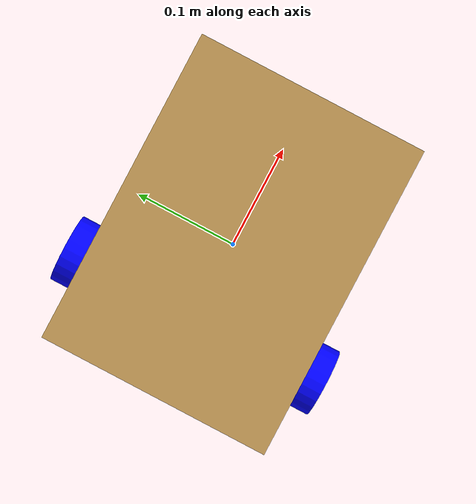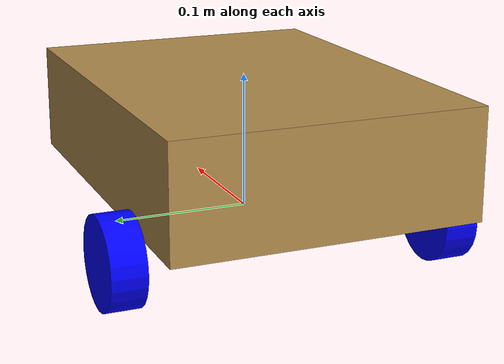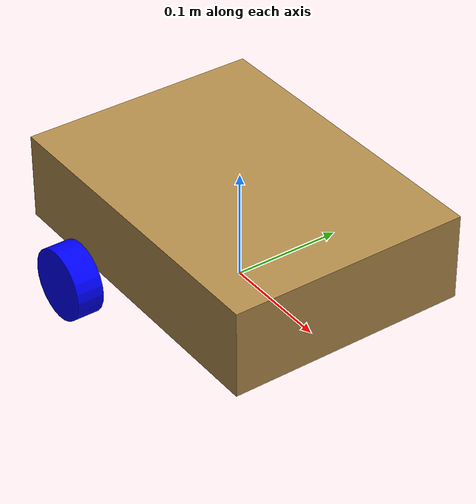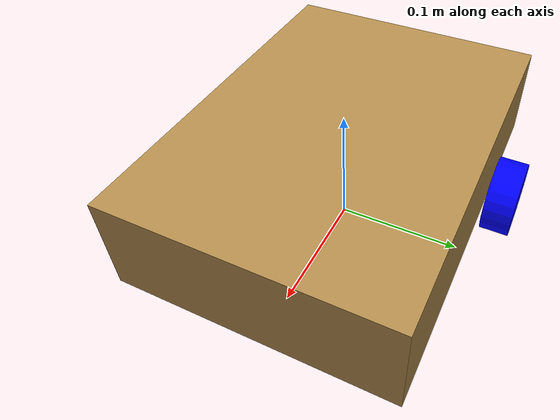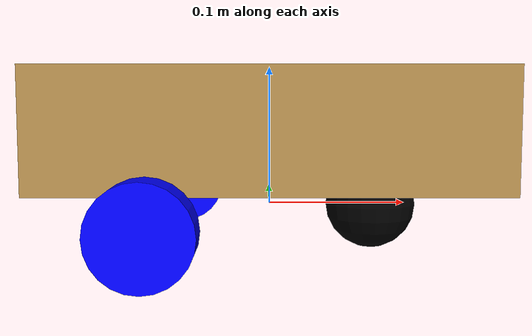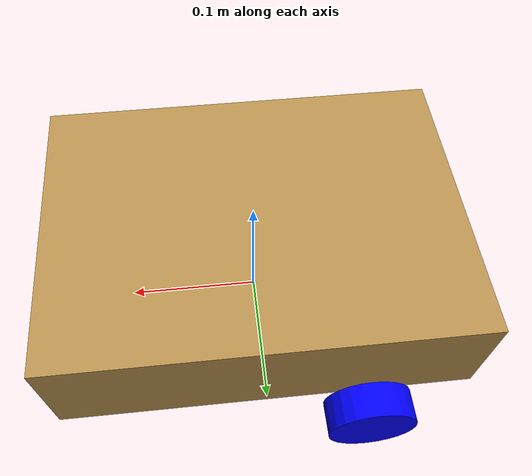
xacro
<?xml version="1.0"?>

<robot xmlns:xacro="http://www.ros.org/wiki/xacro" name="diffbot">

    <!-- COLOR DEFINITIONS -->
    <material name="white">
        <color rgba="1 1 1 1" />
    </material>

    <material name="orange">
        <color rgba="1 0.3 0.1 1"/>
    </material>

    <material name="blue">
        <color rgba="0 0 1 1"/>
    </material>

    <material name="black">
        <color rgba="0 0 0 1"/>
    </material>

    <material name="brown">
        <color rgba="0.7 0.55 0.3 1"/>
    </material>

    <!-- ________________________ ARGUMENT DEFINITIONS ________________________ -->

    <!-- ROS2 VERSION -->
    <xacro:arg name="is_ignition" default="true"/>

    <!-- ________________________ XACRO FILE DEPENDENCIES ________________________ -->

    <!-- INCLUDE INERTIAL MACROS -->
    <xacro:include filename="$(find diffbot_description)/urdf/inertial_macros.xacro"/>

    <!-- GAZEBO -->
    <xacro:include filename="$(find diffbot_description)/urdf/diffbot_gazebo.xacro"/>

    <!-- ROS2 CONTROL -->
    <xacro:include filename="$(find diffbot_description)/urdf/diffbot_ros2_control.xacro"/>

    <!-- ________________________ DIFFBOT URDF MODEL ________________________ -->

    <!-- BASE LINK -->
    <link name="base_link"/>

    <!-- CHASSIS -->
    <joint name="chassis_joint" type="fixed">
        <parent link="base_link"/>
        <child link="chassis"/>
        <origin xyz="0 0 0.06"/>
    </joint>

    <link name="chassis">
        <visual>
            <origin xyz="0 0 0"/>
            <geometry>
                <box size="0.3 0.22 0.08"/>
            </geometry>
            <material name="brown"/>
        </visual>
        <collision>
            <origin xyz="0 0 0"/>
            <geometry>
                <box size="0.3 0.22 0.08"/>
            </geometry>
        </collision>
        <xacro:inertial_box mass="0.5" x="0.3" y="0.22" z="0.08">
            <origin xyz="0 0 0" rpy="0 0 0"/>
        </xacro:inertial_box>
    </link>

    <!-- LEFT WHEEL -->
    <joint name="left_wheel_joint" type="continuous">
        <parent link="base_link"/>
        <child link="left_wheel"/>
        <origin xyz="-0.075 0.1225 0" rpy="-${pi/2} 0 0" />
        <axis xyz="0 0 1"/>
    </joint>

    <link name="left_wheel">
        <visual>
            <geometry>
                <cylinder radius="0.033" length="0.025"/>
            </geometry>
            <material name="blue"/>
        </visual>
        <collision>
            <geometry>
                <cylinder radius="0.033" length="0.025"/>
            </geometry>
        </collision>
        <xacro:inertial_cylinder mass="0.1" length="0.025" radius="0.033">
            <origin xyz="0 0 0" rpy="0 0 0"/>
        </xacro:inertial_cylinder>
    </link>

    <!-- RIGHT WHEEL -->

    <joint name="right_wheel_joint" type="continuous">
        <parent link="base_link"/>
        <child link="right_wheel"/>
        <origin xyz="-0.075 -0.1225 0" rpy="${pi/2} 0 0" />
        <axis xyz="0 0 -1"/>
    </joint>

    <link name="right_wheel">
        <visual>
            <geometry>
                <cylinder radius="0.033" length="0.025"/>
            </geometry>
            <material name="blue"/>
        </visual>
        <collision>
            <geometry>
                <cylinder radius="0.033" length="0.025"/>
            </geometry>
        </collision>
        <xacro:inertial_cylinder mass="0.1" length="0.025" radius="0.033">
            <origin xyz="0 0 0" rpy="0 0 0"/>
        </xacro:inertial_cylinder>
    </link>

    <!-- CASTER WHEEL -->

    <joint name="caster_wheel_joint" type="fixed">
        <parent link="base_link"/>
        <child link="caster_wheel"/>
        <origin xyz="0.075 0 0"/>
    </joint>

    <link name="caster_wheel">
        <visual>
            <geometry>
                <sphere radius="0.033"/>
            </geometry>
            <material name="black"/>
        </visual>
        <collision>
            <geometry>
                <sphere radius="0.033"/>
            </geometry>
        </collision>
        <xacro:inertial_sphere mass="0.1" radius="0.033">
            <origin xyz="0 0 0" rpy="0 0 0"/>
        </xacro:inertial_sphere>
    </link>

</robot>
